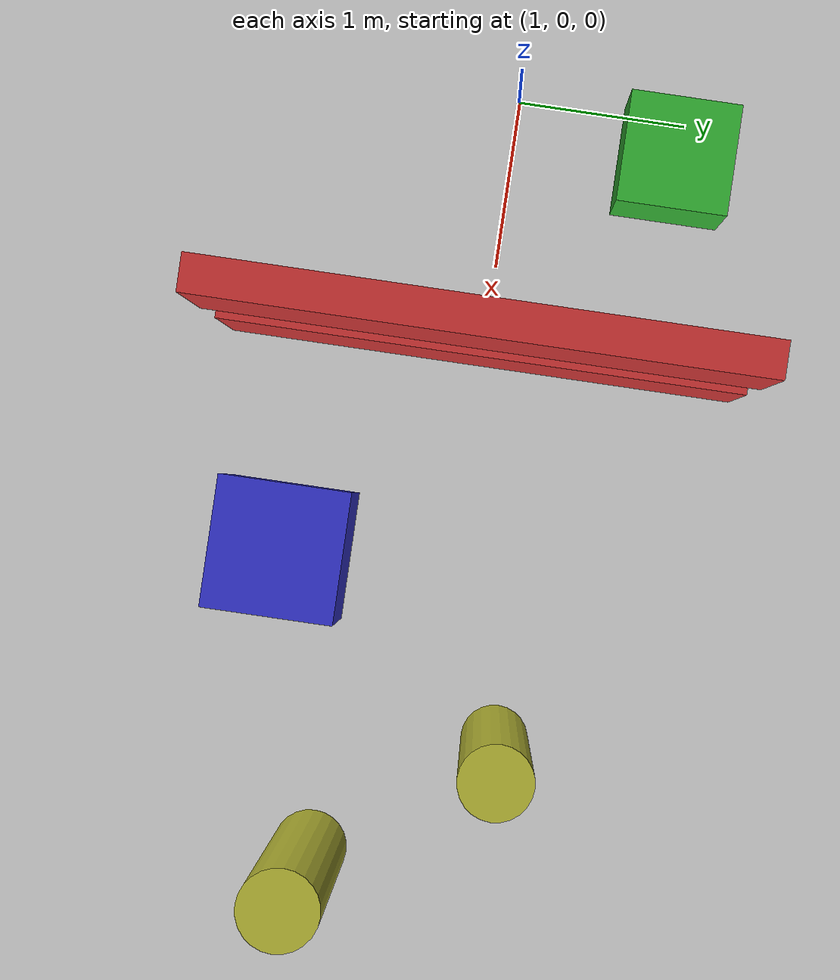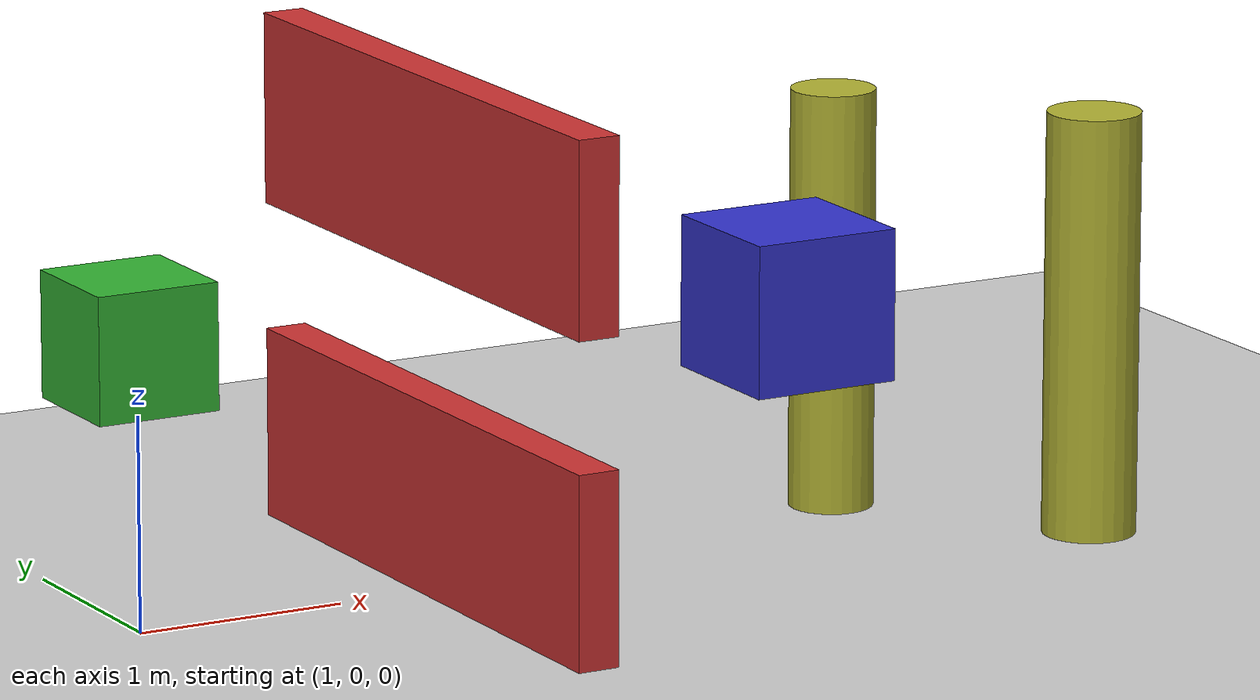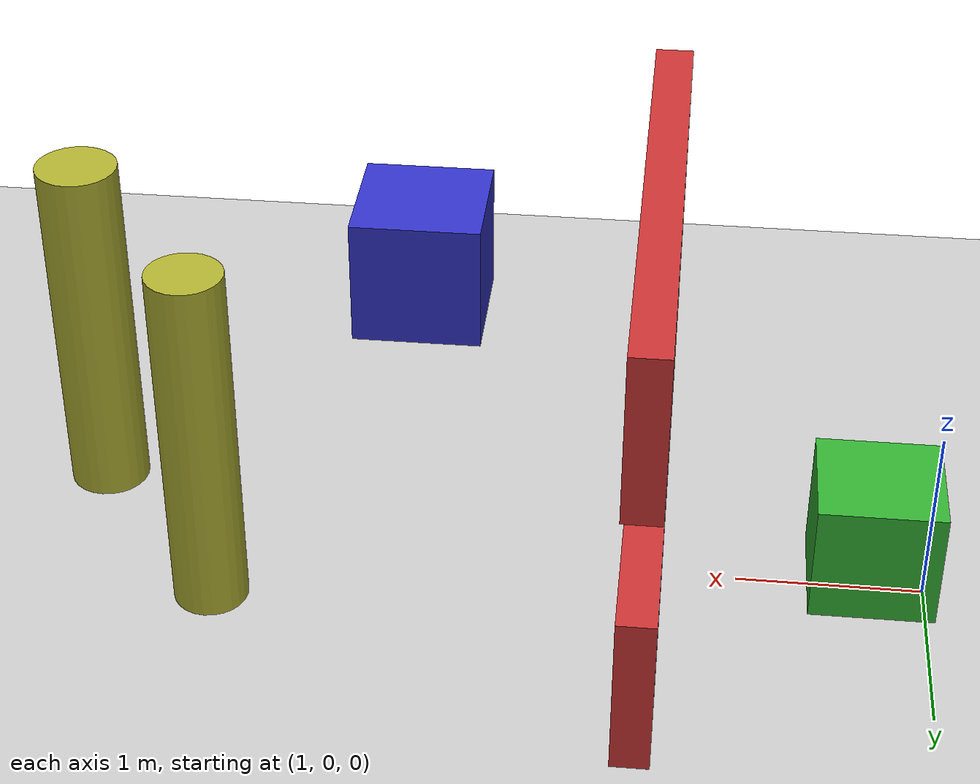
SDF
<?xml version="1.0" ?>
<sdf version="1.6">
  <world name="nav_obstacle_3d_world">
    <include>
      <uri>model://ground_plane</uri>
    </include>
    <include>
      <uri>model://sun</uri>
    </include>

    <!-- Center wall with an upper opening -->
    <model name="center_wall_lower">
      <static>true</static>
      <pose>2.5 0.0 0.45 0 0 0</pose>
      <link name="link">
        <collision name="collision">
          <geometry>
            <box>
              <size>0.2 3.0 0.9</size>
            </box>
          </geometry>
        </collision>
        <visual name="visual">
          <geometry>
            <box>
              <size>0.2 3.0 0.9</size>
            </box>
          </geometry>
          <material>
            <ambient>0.8 0.2 0.2 1</ambient>
            <diffuse>0.8 0.2 0.2 1</diffuse>
          </material>
        </visual>
      </link>
    </model>

    <model name="center_wall_upper">
      <static>true</static>
      <pose>2.5 0.0 1.95 0 0 0</pose>
      <link name="link">
        <collision name="collision">
          <geometry>
            <box>
              <size>0.2 3.0 0.9</size>
            </box>
          </geometry>
        </collision>
        <visual name="visual">
          <geometry>
            <box>
              <size>0.2 3.0 0.9</size>
            </box>
          </geometry>
          <material>
            <ambient>0.8 0.2 0.2 1</ambient>
            <diffuse>0.8 0.2 0.2 1</diffuse>
          </material>
        </visual>
      </link>
    </model>

    <!-- Floating obstacle blocks -->
    <model name="floating_box_left">
      <static>true</static>
      <pose>1.4 0.9 1.1 0 0 0</pose>
      <link name="link">
        <collision name="collision">
          <geometry>
            <box>
              <size>0.6 0.6 0.6</size>
            </box>
          </geometry>
        </collision>
        <visual name="visual">
          <geometry>
            <box>
              <size>0.6 0.6 0.6</size>
            </box>
          </geometry>
          <material>
            <ambient>0.2 0.7 0.2 1</ambient>
            <diffuse>0.2 0.7 0.2 1</diffuse>
          </material>
        </visual>
      </link>
    </model>

    <model name="floating_box_right">
      <static>true</static>
      <pose>3.8 -0.9 1.4 0 0 0</pose>
      <link name="link">
        <collision name="collision">
          <geometry>
            <box>
              <size>0.7 0.7 0.7</size>
            </box>
          </geometry>
        </collision>
        <visual name="visual">
          <geometry>
            <box>
              <size>0.7 0.7 0.7</size>
            </box>
          </geometry>
          <material>
            <ambient>0.2 0.2 0.8 1</ambient>
            <diffuse>0.2 0.2 0.8 1</diffuse>
          </material>
        </visual>
      </link>
    </model>

    <!-- Vertical pillars -->
    <model name="pillar_1">
      <static>true</static>
      <pose>4.8 0.4 1.0 0 0 0</pose>
      <link name="link">
        <collision name="collision">
          <geometry>
            <cylinder>
              <radius>0.2</radius>
              <length>2.0</length>
            </cylinder>
          </geometry>
        </collision>
        <visual name="visual">
          <geometry>
            <cylinder>
              <radius>0.2</radius>
              <length>2.0</length>
            </cylinder>
          </geometry>
          <material>
            <ambient>0.7 0.7 0.2 1</ambient>
            <diffuse>0.7 0.7 0.2 1</diffuse>
          </material>
        </visual>
      </link>
    </model>

    <model name="pillar_2">
      <static>true</static>
      <pose>5.6 -0.6 1.0 0 0 0</pose>
      <link name="link">
        <collision name="collision">
          <geometry>
            <cylinder>
              <radius>0.22</radius>
              <length>2.0</length>
            </cylinder>
          </geometry>
        </collision>
        <visual name="visual">
          <geometry>
            <cylinder>
              <radius>0.22</radius>
              <length>2.0</length>
            </cylinder>
          </geometry>
          <material>
            <ambient>0.7 0.7 0.2 1</ambient>
            <diffuse>0.7 0.7 0.2 1</diffuse>
          </material>
        </visual>
      </link>
    </model>
  </world>
</sdf>
